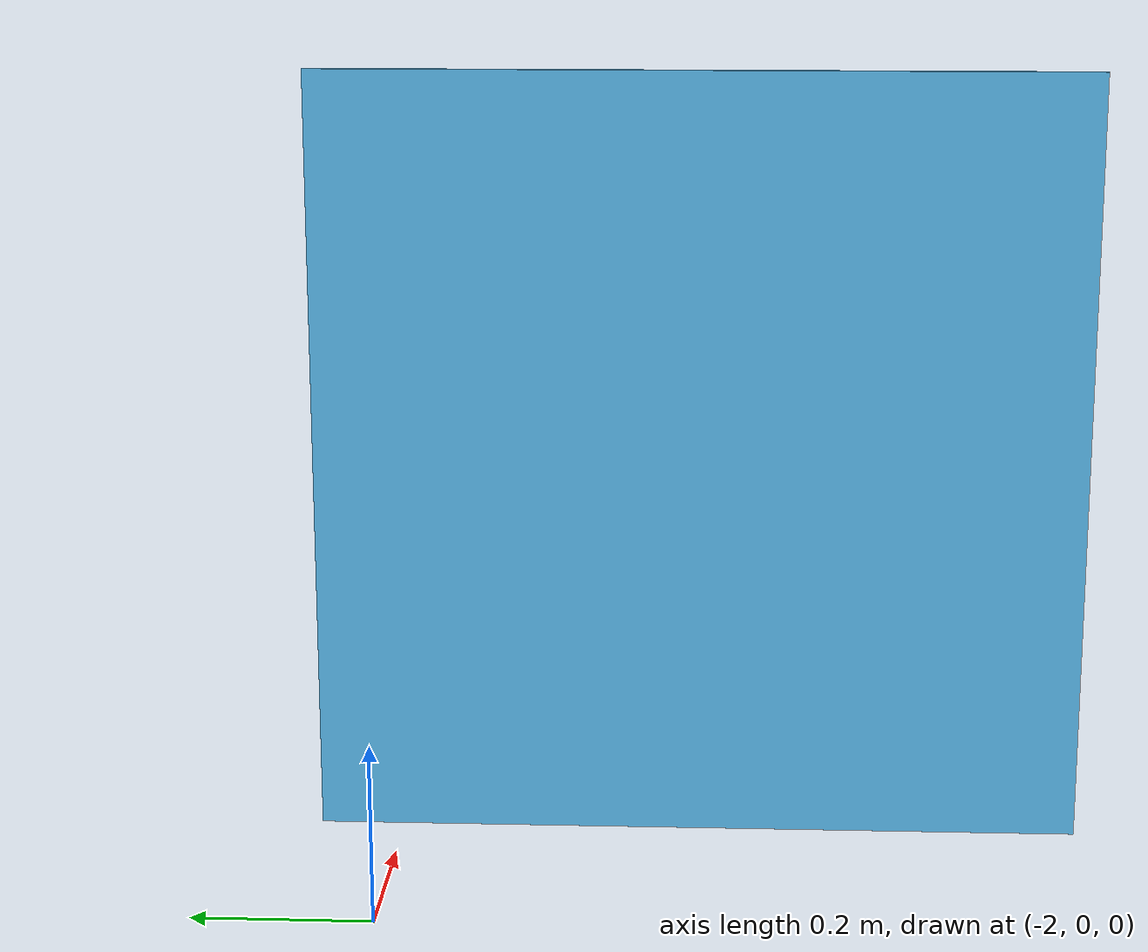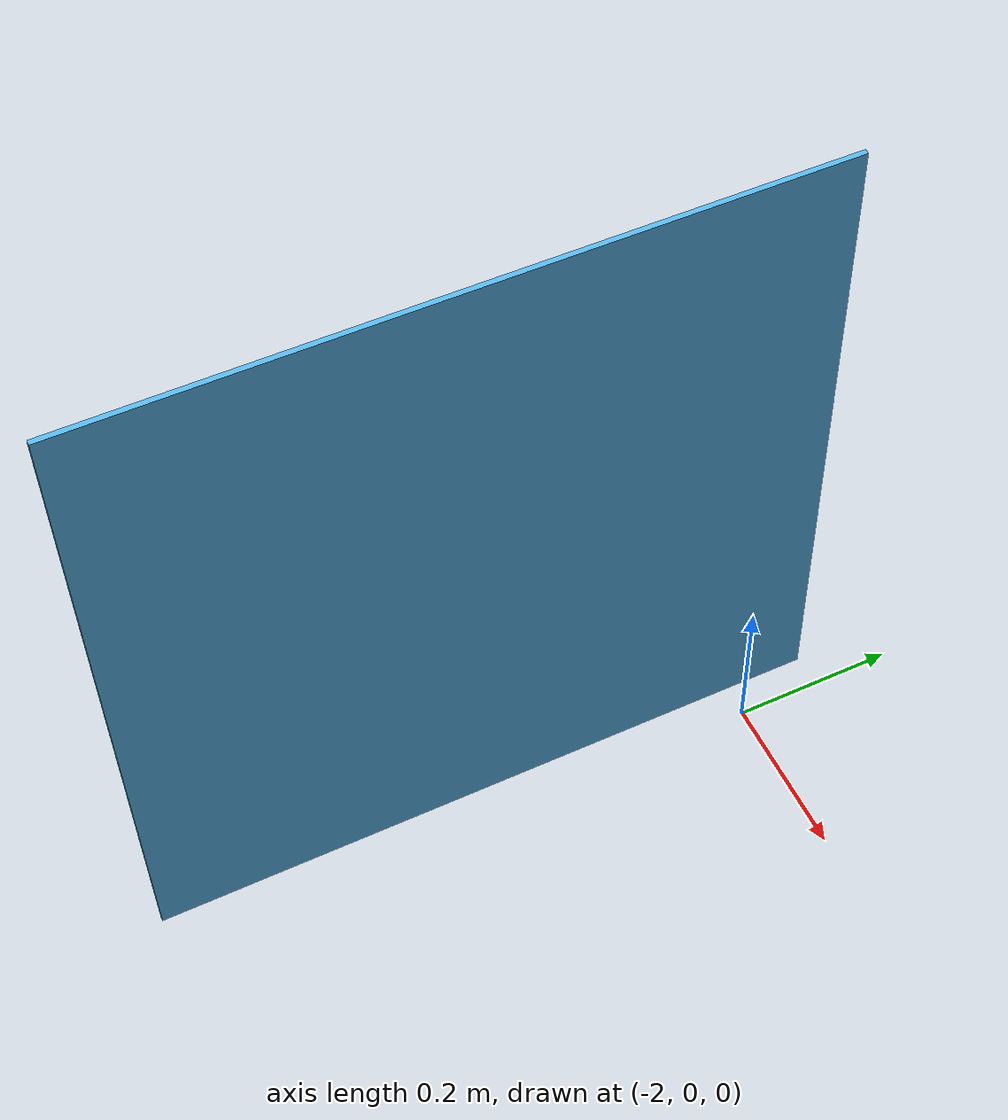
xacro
<?xml version="1.0" ?>
<robot name="aprilgrid" xmlns:xacro="http://www.ros.org/wiki/xacro">

	<!-- * * * Link Definitions * * * -->
   <link name="world">
      <origin xyz="0.0 0.0 0.0"/>
  </link>

    <joint name="board_joint" type="fixed">
      <parent link="world"/>
      <child link="simple_box_base_link"/>
      <origin rpy="0.0 1.5707 0" xyz="-2.0 -0.35 0.5"/>
    </joint>
    <link name="simple_box_base_link">
 	    <inertial>
            <origin xyz="0 0 0" rpy="0 0 0"/>
            <mass value="1.0" />
            <inertia ixx="0.0741666666667" ixy="0.0" ixz="0.0" iyy="0.0585416666667" iyz="0.0" izz="0.0260416666667"/>
        </inertial>
        <collision>
            <origin xyz="0 0 0.02" rpy="0 0 0"/>
            <geometry>
                <box size="0.8 0.8 0.06"/>
            </geometry>
        </collision>
        <visual>
            <origin rpy="0.0 0 0.0" xyz="0 0 0"/>
            <geometry>
                <mesh filename="package://cam_cal_sim/models/aprilgrid/aprilgrid3.dae"/>
            </geometry>
        </visual>
    </link>

    <gazebo reference="simple_box_base_link">
        <kp>100000.0</kp>
        <kd>100000.0</kd>
        <mu1>0.1</mu1>
        <mu2>0.1</mu2>
        <fdir1>1 0 0</fdir1>
    </gazebo>

</robot>
